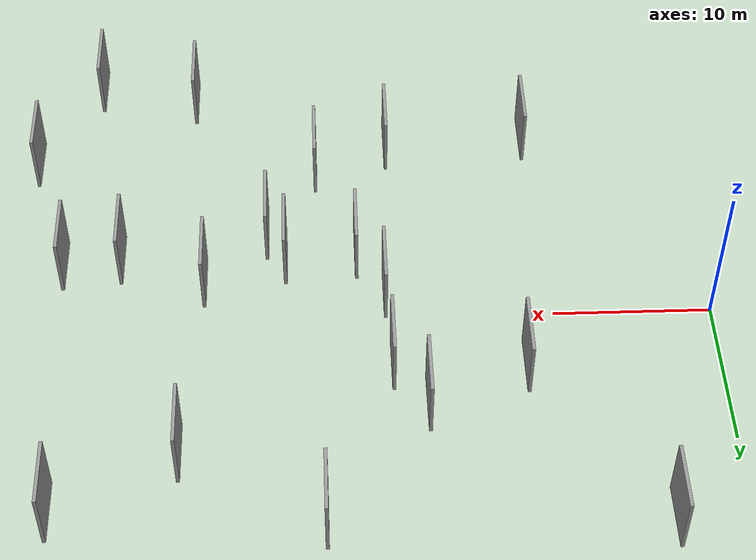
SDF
<sdf version="1.6">
 <world name="default">
  <scene>
   <sky><clouds><speed>12</speed></clouds></sky>
   <ambient>0.4 0.4 0.4 1</ambient>
   <background>0.7 0.7 0.7 1</background>
   <shadows>1</shadows>
  </scene>
  <gravity>0 0 -9.8066</gravity>
  <magnetic_field>6e-06 2.3e-05 -4.2e-05</magnetic_field>
  <physics default="0" name="default_physics" type="ode">
   <ode>
    <solver>
     <type>quick</type>
     <iters>10</iters>
     <sor>1.0</sor>
     <use_dynamic_moi_rescaling>0</use_dynamic_moi_rescaling>
    </solver>
    <constraints>
     <cfm>0</cfm>
     <erp>0.2</erp>
     <contact_max_correcting_vel>100</contact_max_correcting_vel>
     <contact_surface_layer>0.001</contact_surface_layer>
    </constraints>
   </ode>
   <max_step_size>0.004</max_step_size>
   <real_time_factor>1</real_time_factor>
   <real_time_update_rate>250</real_time_update_rate>
  </physics>
  <light name="sun" type="directional">
   <pose>0 0 10 0 0 0</pose>
   <diffuse>0.8 0.8 0.8 1</diffuse>
   <specular>0.2 0.2 0.2 1</specular>
   <attenuation>
    <range>1000</range>
    <constant>0.9</constant>
    <linear>0.01</linear>
    <quadratic>0.001</quadratic>
   </attenuation>
   <direction>-0.5 0.1 -0.9</direction>
  </light>
  <model name="grey_wall_1">
   <static>1</static>
   <pose>32.8743 -17.5760 2.5 0.000000 0.000000 1.570796</pose>
   <link name="link">
    <pose>0 0 2.00 0 0 0</pose>
    <collision name="collision"><geometry><box><size>4.00 0.2 4.00</size></box></geometry></collision>
    <visual name="visual">
     <cast_shadows>0</cast_shadows>
     <geometry><box><size>4.00 0.2 4.00</size></box></geometry>
     <material>
      <script>
       <uri>model://grey_wall/materials/scripts</uri>
       <uri>model://grey_wall/materials/textures</uri>
       <name>vrc/grey_wall</name>
      </script>
     </material>
    </visual>
   </link>
  </model>
  <model name="grey_wall_2">
   <static>1</static>
   <pose>28.0144 -5.0331 2.5 0.000000 0.000000 1.570796</pose>
   <link name="link">
    <pose>0 0 2.00 0 0 0</pose>
    <collision name="collision"><geometry><box><size>4.00 0.2 4.00</size></box></geometry></collision>
    <visual name="visual">
     <cast_shadows>0</cast_shadows>
     <geometry><box><size>4.00 0.2 4.00</size></box></geometry>
     <material>
      <script>
       <uri>model://grey_wall/materials/scripts</uri>
       <uri>model://grey_wall/materials/textures</uri>
       <name>vrc/grey_wall</name>
      </script>
     </material>
    </visual>
   </link>
  </model>
  <model name="grey_wall_3">
   <static>1</static>
   <pose>18.4415 8.6974 2.5 0.000000 0.000000 1.570796</pose>
   <link name="link">
    <pose>0 0 2.00 0 0 0</pose>
    <collision name="collision"><geometry><box><size>4.00 0.2 4.00</size></box></geometry></collision>
    <visual name="visual">
     <cast_shadows>0</cast_shadows>
     <geometry><box><size>4.00 0.2 4.00</size></box></geometry>
     <material>
      <script>
       <uri>model://grey_wall/materials/scripts</uri>
       <uri>model://grey_wall/materials/textures</uri>
       <name>vrc/grey_wall</name>
      </script>
     </material>
    </visual>
   </link>
  </model>
  <model name="grey_wall_4">
   <static>1</static>
   <pose>33.0097 11.7984 2.5 0.000000 0.000000 1.570796</pose>
   <link name="link">
    <pose>0 0 2.00 0 0 0</pose>
    <collision name="collision"><geometry><box><size>4.00 0.2 4.00</size></box></geometry></collision>
    <visual name="visual">
     <cast_shadows>0</cast_shadows>
     <geometry><box><size>4.00 0.2 4.00</size></box></geometry>
     <material>
      <script>
       <uri>model://grey_wall/materials/scripts</uri>
       <uri>model://grey_wall/materials/textures</uri>
       <name>vrc/grey_wall</name>
      </script>
     </material>
    </visual>
   </link>
  </model>
  <model name="grey_wall_5">
   <static>1</static>
   <pose>11.1217 -13.3748 2.5 0.000000 0.000000 1.570796</pose>
   <link name="link">
    <pose>0 0 2.00 0 0 0</pose>
    <collision name="collision"><geometry><box><size>4.00 0.2 4.00</size></box></geometry></collision>
    <visual name="visual">
     <cast_shadows>0</cast_shadows>
     <geometry><box><size>4.00 0.2 4.00</size></box></geometry>
     <material>
      <script>
       <uri>model://grey_wall/materials/scripts</uri>
       <uri>model://grey_wall/materials/textures</uri>
       <name>vrc/grey_wall</name>
      </script>
     </material>
    </visual>
   </link>
  </model>
  <model name="grey_wall_6">
   <static>1</static>
   <pose>40.7295 -2.8819 2.5 0.000000 0.000000 1.570796</pose>
   <link name="link">
    <pose>0 0 2.00 0 0 0</pose>
    <collision name="collision"><geometry><box><size>4.00 0.2 4.00</size></box></geometry></collision>
    <visual name="visual">
     <cast_shadows>0</cast_shadows>
     <geometry><box><size>4.00 0.2 4.00</size></box></geometry>
     <material>
      <script>
       <uri>model://grey_wall/materials/scripts</uri>
       <uri>model://grey_wall/materials/textures</uri>
       <name>vrc/grey_wall</name>
      </script>
     </material>
    </visual>
   </link>
  </model>
  <model name="grey_wall_7">
   <static>1</static>
   <pose>20.7189 0.0154 2.5 0.000000 0.000000 1.570796</pose>
   <link name="link">
    <pose>0 0 2.00 0 0 0</pose>
    <collision name="collision"><geometry><box><size>4.00 0.2 4.00</size></box></geometry></collision>
    <visual name="visual">
     <cast_shadows>0</cast_shadows>
     <geometry><box><size>4.00 0.2 4.00</size></box></geometry>
     <material>
      <script>
       <uri>model://grey_wall/materials/scripts</uri>
       <uri>model://grey_wall/materials/textures</uri>
       <name>vrc/grey_wall</name>
      </script>
     </material>
    </visual>
   </link>
  </model>
  <model name="grey_wall_8">
   <static>1</static>
   <pose>26.8570 -2.9525 2.5 0.000000 0.000000 1.570796</pose>
   <link name="link">
    <pose>0 0 2.00 0 0 0</pose>
    <collision name="collision"><geometry><box><size>4.00 0.2 4.00</size></box></geometry></collision>
    <visual name="visual">
     <cast_shadows>0</cast_shadows>
     <geometry><box><size>4.00 0.2 4.00</size></box></geometry>
     <material>
      <script>
       <uri>model://grey_wall/materials/scripts</uri>
       <uri>model://grey_wall/materials/textures</uri>
       <name>vrc/grey_wall</name>
      </script>
     </material>
    </visual>
   </link>
  </model>
  <model name="grey_wall_9">
   <static>1</static>
   <pose>37.1280 -3.2717 2.5 0.000000 0.000000 1.570796</pose>
   <link name="link">
    <pose>0 0 2.00 0 0 0</pose>
    <collision name="collision"><geometry><box><size>4.00 0.2 4.00</size></box></geometry></collision>
    <visual name="visual">
     <cast_shadows>0</cast_shadows>
     <geometry><box><size>4.00 0.2 4.00</size></box></geometry>
     <material>
      <script>
       <uri>model://grey_wall/materials/scripts</uri>
       <uri>model://grey_wall/materials/textures</uri>
       <name>vrc/grey_wall</name>
      </script>
     </material>
    </visual>
   </link>
  </model>
  <model name="grey_wall_10">
   <static>1</static>
   <pose>12.4296 6.0405 2.5 0.000000 0.000000 1.570796</pose>
   <link name="link">
    <pose>0 0 2.00 0 0 0</pose>
    <collision name="collision"><geometry><box><size>4.00 0.2 4.00</size></box></geometry></collision>
    <visual name="visual">
     <cast_shadows>0</cast_shadows>
     <geometry><box><size>4.00 0.2 4.00</size></box></geometry>
     <material>
      <script>
       <uri>model://grey_wall/materials/scripts</uri>
       <uri>model://grey_wall/materials/textures</uri>
       <name>vrc/grey_wall</name>
      </script>
     </material>
    </visual>
   </link>
  </model>
  <model name="grey_wall_11">
   <static>1</static>
   <pose>43.0251 -11.9939 2.5 0.000000 0.000000 1.570796</pose>
   <link name="link">
    <pose>0 0 2.00 0 0 0</pose>
    <collision name="collision"><geometry><box><size>4.00 0.2 4.00</size></box></geometry></collision>
    <visual name="visual">
     <cast_shadows>0</cast_shadows>
     <geometry><box><size>4.00 0.2 4.00</size></box></geometry>
     <material>
      <script>
       <uri>model://grey_wall/materials/scripts</uri>
       <uri>model://grey_wall/materials/textures</uri>
       <name>vrc/grey_wall</name>
      </script>
     </material>
    </visual>
   </link>
  </model>
  <model name="grey_wall_12">
   <static>1</static>
   <pose>24.5792 16.5338 2.5 0.000000 0.000000 1.570796</pose>
   <link name="link">
    <pose>0 0 2.00 0 0 0</pose>
    <collision name="collision"><geometry><box><size>4.00 0.2 4.00</size></box></geometry></collision>
    <visual name="visual">
     <cast_shadows>0</cast_shadows>
     <geometry><box><size>4.00 0.2 4.00</size></box></geometry>
     <material>
      <script>
       <uri>model://grey_wall/materials/scripts</uri>
       <uri>model://grey_wall/materials/textures</uri>
       <name>vrc/grey_wall</name>
      </script>
     </material>
    </visual>
   </link>
  </model>
  <model name="grey_wall_13">
   <static>1</static>
   <pose>20.4362 5.5870 2.5 0.000000 0.000000 1.570796</pose>
   <link name="link">
    <pose>0 0 2.00 0 0 0</pose>
    <collision name="collision"><geometry><box><size>4.00 0.2 4.00</size></box></geometry></collision>
    <visual name="visual">
     <cast_shadows>0</cast_shadows>
     <geometry><box><size>4.00 0.2 4.00</size></box></geometry>
     <material>
      <script>
       <uri>model://grey_wall/materials/scripts</uri>
       <uri>model://grey_wall/materials/textures</uri>
       <name>vrc/grey_wall</name>
      </script>
     </material>
    </visual>
   </link>
  </model>
  <model name="grey_wall_14">
   <static>1</static>
   <pose>20.2271 -12.8143 2.5 0.000000 0.000000 1.570796</pose>
   <link name="link">
    <pose>0 0 2.00 0 0 0</pose>
    <collision name="collision"><geometry><box><size>4.00 0.2 4.00</size></box></geometry></collision>
    <visual name="visual">
     <cast_shadows>0</cast_shadows>
     <geometry><box><size>4.00 0.2 4.00</size></box></geometry>
     <material>
      <script>
       <uri>model://grey_wall/materials/scripts</uri>
       <uri>model://grey_wall/materials/textures</uri>
       <name>vrc/grey_wall</name>
      </script>
     </material>
    </visual>
   </link>
  </model>
  <model name="grey_wall_15">
   <static>1</static>
   <pose>40.2539 15.5681 2.5 0.000000 0.000000 1.570796</pose>
   <link name="link">
    <pose>0 0 2.00 0 0 0</pose>
    <collision name="collision"><geometry><box><size>4.00 0.2 4.00</size></box></geometry></collision>
    <visual name="visual">
     <cast_shadows>0</cast_shadows>
     <geometry><box><size>4.00 0.2 4.00</size></box></geometry>
     <material>
      <script>
       <uri>model://grey_wall/materials/scripts</uri>
       <uri>model://grey_wall/materials/textures</uri>
       <name>vrc/grey_wall</name>
      </script>
     </material>
    </visual>
   </link>
  </model>
  <model name="grey_wall_16">
   <static>1</static>
   <pose>24.8909 -10.8664 2.5 0.000000 0.000000 1.570796</pose>
   <link name="link">
    <pose>0 0 2.00 0 0 0</pose>
    <collision name="collision"><geometry><box><size>4.00 0.2 4.00</size></box></geometry></collision>
    <visual name="visual">
     <cast_shadows>0</cast_shadows>
     <geometry><box><size>4.00 0.2 4.00</size></box></geometry>
     <material>
      <script>
       <uri>model://grey_wall/materials/scripts</uri>
       <uri>model://grey_wall/materials/textures</uri>
       <name>vrc/grey_wall</name>
      </script>
     </material>
    </visual>
   </link>
  </model>
  <model name="grey_wall_17">
   <static>1</static>
   <pose>31.8797 -1.1872 2.5 0.000000 0.000000 1.570796</pose>
   <link name="link">
    <pose>0 0 2.00 0 0 0</pose>
    <collision name="collision"><geometry><box><size>4.00 0.2 4.00</size></box></geometry></collision>
    <visual name="visual">
     <cast_shadows>0</cast_shadows>
     <geometry><box><size>4.00 0.2 4.00</size></box></geometry>
     <material>
      <script>
       <uri>model://grey_wall/materials/scripts</uri>
       <uri>model://grey_wall/materials/textures</uri>
       <name>vrc/grey_wall</name>
      </script>
     </material>
    </visual>
   </link>
  </model>
  <model name="grey_wall_18">
   <static>1</static>
   <pose>39.2280 -18.9818 2.5 0.000000 0.000000 1.570796</pose>
   <link name="link">
    <pose>0 0 2.00 0 0 0</pose>
    <collision name="collision"><geometry><box><size>4.00 0.2 4.00</size></box></geometry></collision>
    <visual name="visual">
     <cast_shadows>0</cast_shadows>
     <geometry><box><size>4.00 0.2 4.00</size></box></geometry>
     <material>
      <script>
       <uri>model://grey_wall/materials/scripts</uri>
       <uri>model://grey_wall/materials/textures</uri>
       <name>vrc/grey_wall</name>
      </script>
     </material>
    </visual>
   </link>
  </model>
  <model name="grey_wall_19">
   <static>1</static>
   <pose>22.4096 -3.2440 2.5 0.000000 0.000000 1.570796</pose>
   <link name="link">
    <pose>0 0 2.00 0 0 0</pose>
    <collision name="collision"><geometry><box><size>4.00 0.2 4.00</size></box></geometry></collision>
    <visual name="visual">
     <cast_shadows>0</cast_shadows>
     <geometry><box><size>4.00 0.2 4.00</size></box></geometry>
     <material>
      <script>
       <uri>model://grey_wall/materials/scripts</uri>
       <uri>model://grey_wall/materials/textures</uri>
       <name>vrc/grey_wall</name>
      </script>
     </material>
    </visual>
   </link>
  </model>
  <model name="grey_wall_20">
   <static>1</static>
   <pose>5.0179 17.0387 2.5 0.000000 0.000000 1.570796</pose>
   <link name="link">
    <pose>0 0 2.00 0 0 0</pose>
    <collision name="collision"><geometry><box><size>4.00 0.2 4.00</size></box></geometry></collision>
    <visual name="visual">
     <cast_shadows>0</cast_shadows>
     <geometry><box><size>4.00 0.2 4.00</size></box></geometry>
     <material>
      <script>
       <uri>model://grey_wall/materials/scripts</uri>
       <uri>model://grey_wall/materials/textures</uri>
       <name>vrc/grey_wall</name>
      </script>
     </material>
    </visual>
   </link>
  </model>
 </world>
</sdf>
